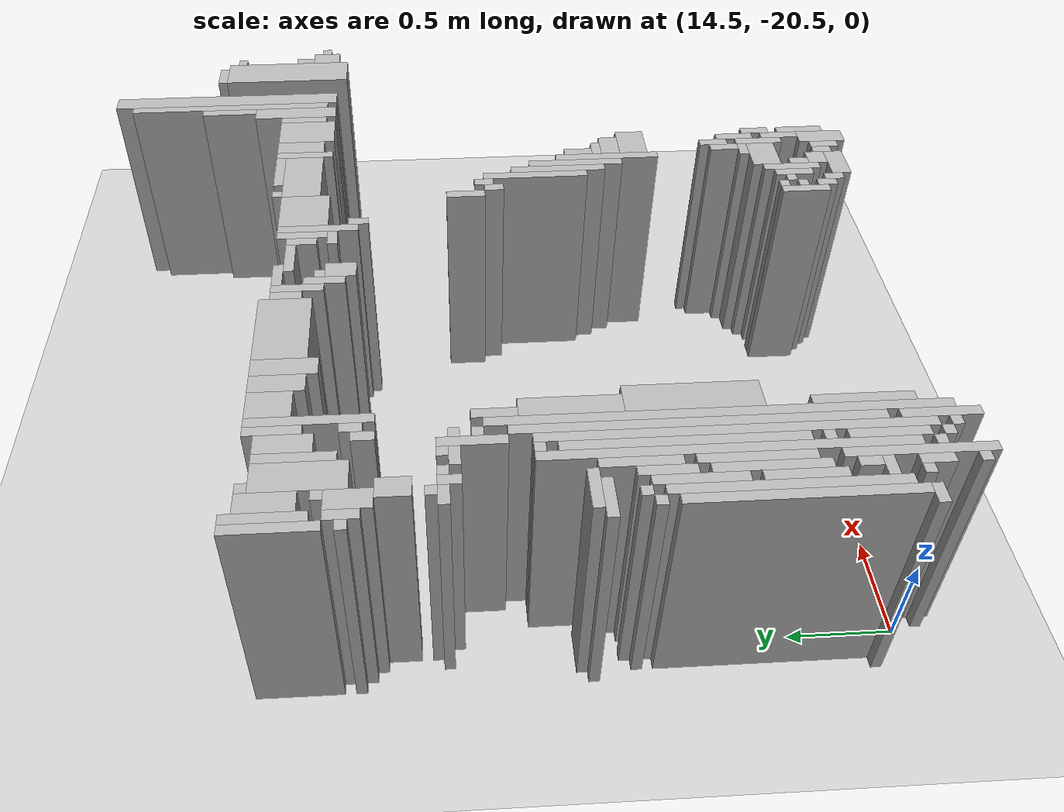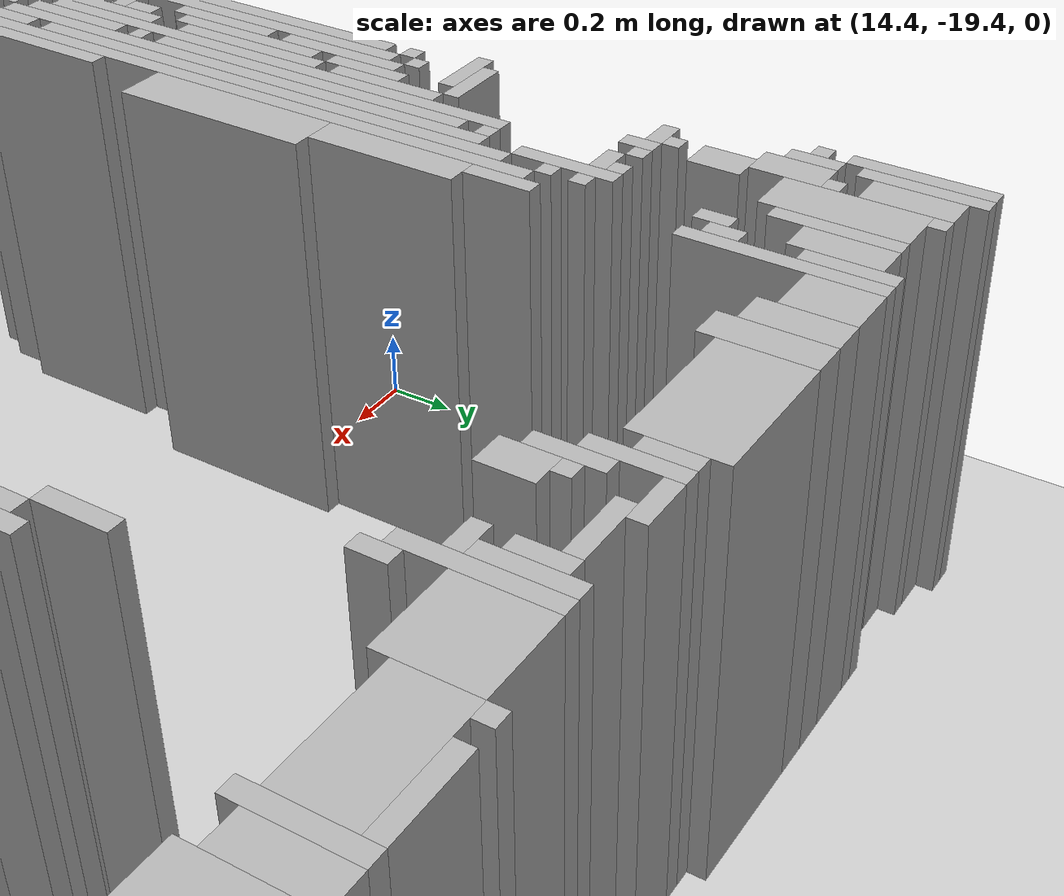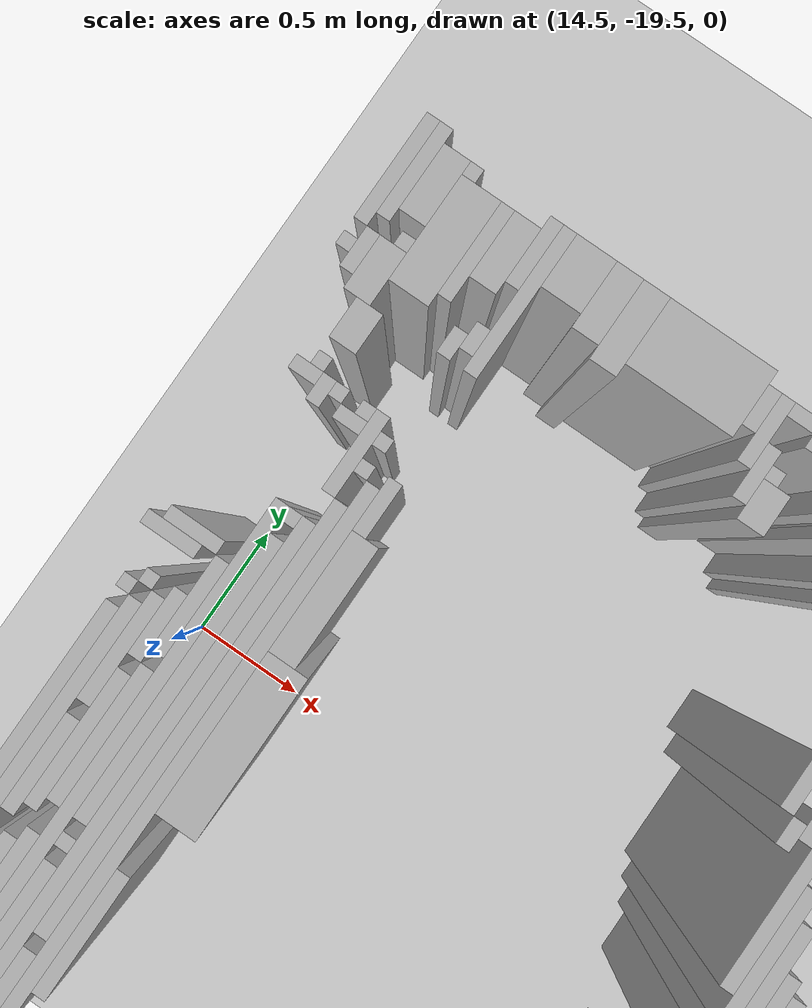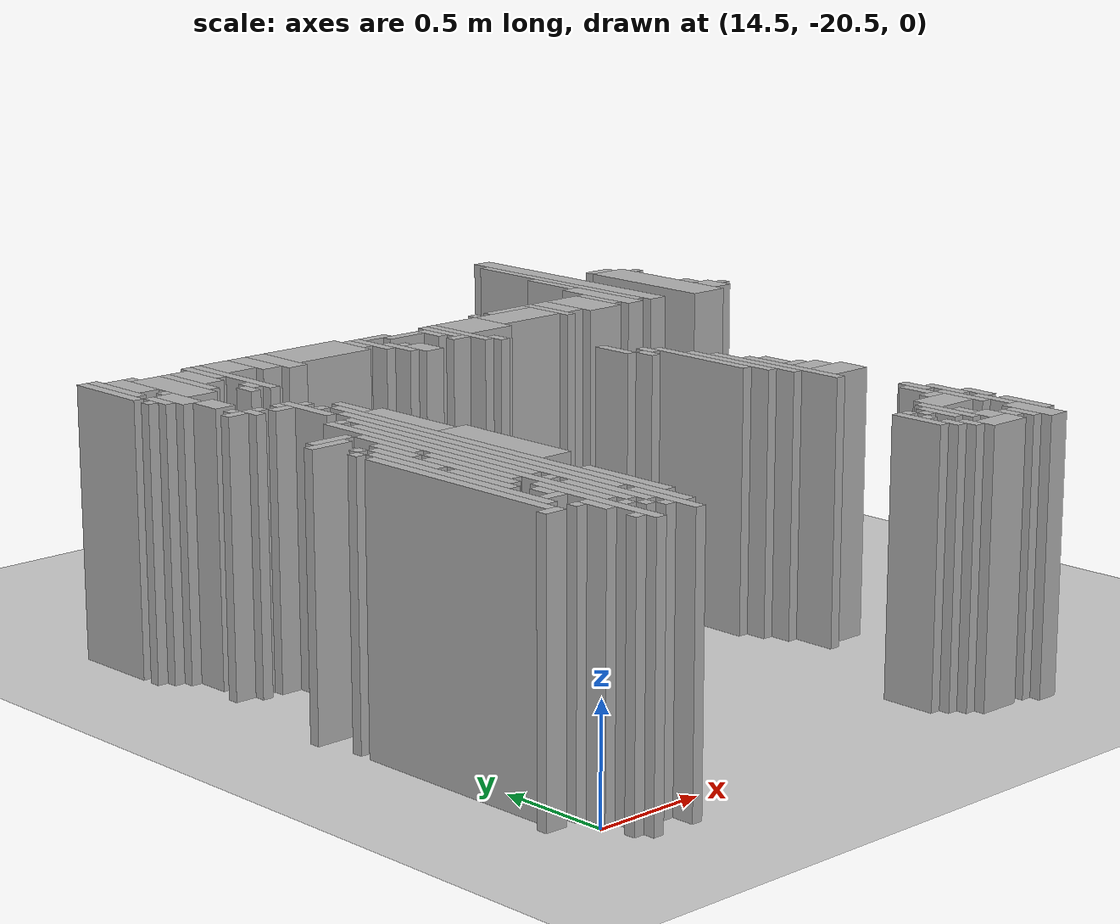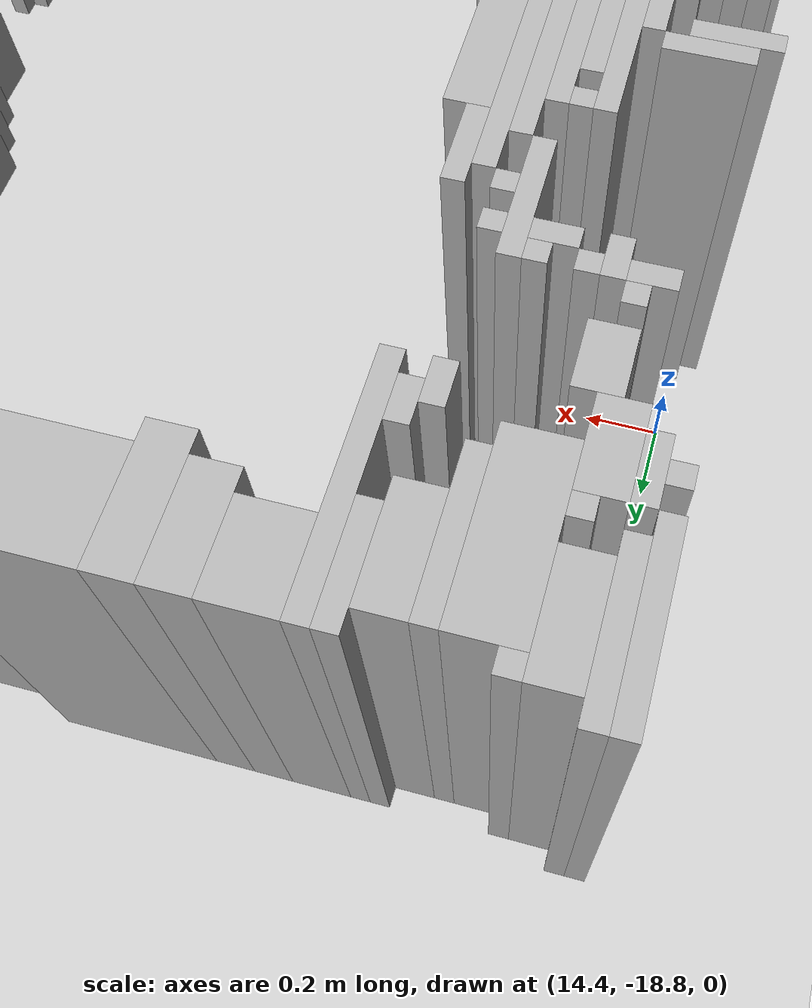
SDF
<sdf version="1.6">
 <world name="d10_floor">
  <include><uri>model://sun</uri></include>
  <include><uri>model://ground_plane</uri></include>
  <model name="d10_walls">
   <static>true</static>
   <link name="w8">
    <pose>14.600 -20.370 0.60 0 0 0</pose>
    <collision name="c"><geometry><box><size>0.050 0.650 1.20</size></box></geometry></collision>
    <visual name="v">
     <geometry><box><size>0.050 0.650 1.20</size></box></geometry>
     <material><ambient>0.6 0.6 0.6 1</ambient><diffuse>0.7 0.7 0.7 1</diffuse></material>
    </visual>
   </link>
   <link name="w9">
    <pose>14.800 -20.520 0.60 0 0 0</pose>
    <collision name="c"><geometry><box><size>0.050 0.350 1.20</size></box></geometry></collision>
    <visual name="v">
     <geometry><box><size>0.050 0.350 1.20</size></box></geometry>
     <material><ambient>0.6 0.6 0.6 1</ambient><diffuse>0.7 0.7 0.7 1</diffuse></material>
    </visual>
   </link>
   <link name="w10">
    <pose>16.875 -20.570 0.60 0 0 0</pose>
    <collision name="c"><geometry><box><size>0.100 0.250 1.20</size></box></geometry></collision>
    <visual name="v">
     <geometry><box><size>0.100 0.250 1.20</size></box></geometry>
     <material><ambient>0.6 0.6 0.6 1</ambient><diffuse>0.7 0.7 0.7 1</diffuse></material>
    </visual>
   </link>
   <link name="w12">
    <pose>14.550 -20.620 0.60 0 0 0</pose>
    <collision name="c"><geometry><box><size>0.050 0.050 1.20</size></box></geometry></collision>
    <visual name="v">
     <geometry><box><size>0.050 0.050 1.20</size></box></geometry>
     <material><ambient>0.6 0.6 0.6 1</ambient><diffuse>0.7 0.7 0.7 1</diffuse></material>
    </visual>
   </link>
   <link name="w13">
    <pose>16.625 -20.595 0.60 0 0 0</pose>
    <collision name="c"><geometry><box><size>0.200 0.100 1.20</size></box></geometry></collision>
    <visual name="v">
     <geometry><box><size>0.200 0.100 1.20</size></box></geometry>
     <material><ambient>0.6 0.6 0.6 1</ambient><diffuse>0.7 0.7 0.7 1</diffuse></material>
    </visual>
   </link>
   <link name="w14">
    <pose>16.800 -20.570 0.60 0 0 0</pose>
    <collision name="c"><geometry><box><size>0.050 0.150 1.20</size></box></geometry></collision>
    <visual name="v">
     <geometry><box><size>0.050 0.150 1.20</size></box></geometry>
     <material><ambient>0.6 0.6 0.6 1</ambient><diffuse>0.7 0.7 0.7 1</diffuse></material>
    </visual>
   </link>
   <link name="w16">
    <pose>14.750 -20.570 0.60 0 0 0</pose>
    <collision name="c"><geometry><box><size>0.050 0.050 1.20</size></box></geometry></collision>
    <visual name="v">
     <geometry><box><size>0.050 0.050 1.20</size></box></geometry>
     <material><ambient>0.6 0.6 0.6 1</ambient><diffuse>0.7 0.7 0.7 1</diffuse></material>
    </visual>
   </link>
   <link name="w17">
    <pose>14.850 -19.595 0.60 0 0 0</pose>
    <collision name="c"><geometry><box><size>0.050 2.000 1.20</size></box></geometry></collision>
    <visual name="v">
     <geometry><box><size>0.050 2.000 1.20</size></box></geometry>
     <material><ambient>0.6 0.6 0.6 1</ambient><diffuse>0.7 0.7 0.7 1</diffuse></material>
    </visual>
   </link>
   <link name="w18">
    <pose>16.500 -20.545 0.60 0 0 0</pose>
    <collision name="c"><geometry><box><size>0.050 0.100 1.20</size></box></geometry></collision>
    <visual name="v">
     <geometry><box><size>0.050 0.100 1.20</size></box></geometry>
     <material><ambient>0.6 0.6 0.6 1</ambient><diffuse>0.7 0.7 0.7 1</diffuse></material>
    </visual>
   </link>
   <link name="w19">
    <pose>16.750 -20.545 0.60 0 0 0</pose>
    <collision name="c"><geometry><box><size>0.050 0.100 1.20</size></box></geometry></collision>
    <visual name="v">
     <geometry><box><size>0.050 0.100 1.20</size></box></geometry>
     <material><ambient>0.6 0.6 0.6 1</ambient><diffuse>0.7 0.7 0.7 1</diffuse></material>
    </visual>
   </link>
   <link name="w20">
    <pose>16.950 -20.470 0.60 0 0 0</pose>
    <collision name="c"><geometry><box><size>0.050 0.250 1.20</size></box></geometry></collision>
    <visual name="v">
     <geometry><box><size>0.050 0.250 1.20</size></box></geometry>
     <material><ambient>0.6 0.6 0.6 1</ambient><diffuse>0.7 0.7 0.7 1</diffuse></material>
    </visual>
   </link>
   <link name="w23">
    <pose>14.700 -20.520 0.60 0 0 0</pose>
    <collision name="c"><geometry><box><size>0.050 0.050 1.20</size></box></geometry></collision>
    <visual name="v">
     <geometry><box><size>0.050 0.050 1.20</size></box></geometry>
     <material><ambient>0.6 0.6 0.6 1</ambient><diffuse>0.7 0.7 0.7 1</diffuse></material>
    </visual>
   </link>
   <link name="w24">
    <pose>16.450 -20.495 0.60 0 0 0</pose>
    <collision name="c"><geometry><box><size>0.050 0.100 1.20</size></box></geometry></collision>
    <visual name="v">
     <geometry><box><size>0.050 0.100 1.20</size></box></geometry>
     <material><ambient>0.6 0.6 0.6 1</ambient><diffuse>0.7 0.7 0.7 1</diffuse></material>
    </visual>
   </link>
   <link name="w25">
    <pose>16.675 -20.495 0.60 0 0 0</pose>
    <collision name="c"><geometry><box><size>0.100 0.100 1.20</size></box></geometry></collision>
    <visual name="v">
     <geometry><box><size>0.100 0.100 1.20</size></box></geometry>
     <material><ambient>0.6 0.6 0.6 1</ambient><diffuse>0.7 0.7 0.7 1</diffuse></material>
    </visual>
   </link>
   <link name="w26">
    <pose>14.550 -20.420 0.60 0 0 0</pose>
    <collision name="c"><geometry><box><size>0.050 0.150 1.20</size></box></geometry></collision>
    <visual name="v">
     <geometry><box><size>0.050 0.150 1.20</size></box></geometry>
     <material><ambient>0.6 0.6 0.6 1</ambient><diffuse>0.7 0.7 0.7 1</diffuse></material>
    </visual>
   </link>
   <link name="w27">
    <pose>14.650 -20.470 0.60 0 0 0</pose>
    <collision name="c"><geometry><box><size>0.050 0.050 1.20</size></box></geometry></collision>
    <visual name="v">
     <geometry><box><size>0.050 0.050 1.20</size></box></geometry>
     <material><ambient>0.6 0.6 0.6 1</ambient><diffuse>0.7 0.7 0.7 1</diffuse></material>
    </visual>
   </link>
   <link name="w28">
    <pose>14.750 -19.645 0.60 0 0 0</pose>
    <collision name="c"><geometry><box><size>0.050 1.700 1.20</size></box></geometry></collision>
    <visual name="v">
     <geometry><box><size>0.050 1.700 1.20</size></box></geometry>
     <material><ambient>0.6 0.6 0.6 1</ambient><diffuse>0.7 0.7 0.7 1</diffuse></material>
    </visual>
   </link>
   <link name="w29">
    <pose>16.400 -20.370 0.60 0 0 0</pose>
    <collision name="c"><geometry><box><size>0.050 0.250 1.20</size></box></geometry></collision>
    <visual name="v">
     <geometry><box><size>0.050 0.250 1.20</size></box></geometry>
     <material><ambient>0.6 0.6 0.6 1</ambient><diffuse>0.7 0.7 0.7 1</diffuse></material>
    </visual>
   </link>
   <link name="w30">
    <pose>16.600 -20.345 0.60 0 0 0</pose>
    <collision name="c"><geometry><box><size>0.050 0.300 1.20</size></box></geometry></collision>
    <visual name="v">
     <geometry><box><size>0.050 0.300 1.20</size></box></geometry>
     <material><ambient>0.6 0.6 0.6 1</ambient><diffuse>0.7 0.7 0.7 1</diffuse></material>
    </visual>
   </link>
   <link name="w31">
    <pose>14.700 -20.270 0.60 0 0 0</pose>
    <collision name="c"><geometry><box><size>0.050 0.350 1.20</size></box></geometry></collision>
    <visual name="v">
     <geometry><box><size>0.050 0.350 1.20</size></box></geometry>
     <material><ambient>0.6 0.6 0.6 1</ambient><diffuse>0.7 0.7 0.7 1</diffuse></material>
    </visual>
   </link>
   <link name="w32">
    <pose>14.900 -20.220 0.60 0 0 0</pose>
    <collision name="c"><geometry><box><size>0.050 0.450 1.20</size></box></geometry></collision>
    <visual name="v">
     <geometry><box><size>0.050 0.450 1.20</size></box></geometry>
     <material><ambient>0.6 0.6 0.6 1</ambient><diffuse>0.7 0.7 0.7 1</diffuse></material>
    </visual>
   </link>
   <link name="w33">
    <pose>16.550 -20.345 0.60 0 0 0</pose>
    <collision name="c"><geometry><box><size>0.050 0.200 1.20</size></box></geometry></collision>
    <visual name="v">
     <geometry><box><size>0.050 0.200 1.20</size></box></geometry>
     <material><ambient>0.6 0.6 0.6 1</ambient><diffuse>0.7 0.7 0.7 1</diffuse></material>
    </visual>
   </link>
   <link name="w34">
    <pose>16.650 -20.395 0.60 0 0 0</pose>
    <collision name="c"><geometry><box><size>0.050 0.100 1.20</size></box></geometry></collision>
    <visual name="v">
     <geometry><box><size>0.050 0.100 1.20</size></box></geometry>
     <material><ambient>0.6 0.6 0.6 1</ambient><diffuse>0.7 0.7 0.7 1</diffuse></material>
    </visual>
   </link>
   <link name="w35">
    <pose>16.900 -20.345 0.60 0 0 0</pose>
    <collision name="c"><geometry><box><size>0.050 0.200 1.20</size></box></geometry></collision>
    <visual name="v">
     <geometry><box><size>0.050 0.200 1.20</size></box></geometry>
     <material><ambient>0.6 0.6 0.6 1</ambient><diffuse>0.7 0.7 0.7 1</diffuse></material>
    </visual>
   </link>
   <link name="w37">
    <pose>14.375 -20.370 0.60 0 0 0</pose>
    <collision name="c"><geometry><box><size>0.100 0.050 1.20</size></box></geometry></collision>
    <visual name="v">
     <geometry><box><size>0.100 0.050 1.20</size></box></geometry>
     <material><ambient>0.6 0.6 0.6 1</ambient><diffuse>0.7 0.7 0.7 1</diffuse></material>
    </visual>
   </link>
   <link name="w38">
    <pose>14.500 -20.370 0.60 0 0 0</pose>
    <collision name="c"><geometry><box><size>0.050 0.050 1.20</size></box></geometry></collision>
    <visual name="v">
     <geometry><box><size>0.050 0.050 1.20</size></box></geometry>
     <material><ambient>0.6 0.6 0.6 1</ambient><diffuse>0.7 0.7 0.7 1</diffuse></material>
    </visual>
   </link>
   <link name="w39">
    <pose>14.650 -19.595 0.60 0 0 0</pose>
    <collision name="c"><geometry><box><size>0.050 1.600 1.20</size></box></geometry></collision>
    <visual name="v">
     <geometry><box><size>0.050 1.600 1.20</size></box></geometry>
     <material><ambient>0.6 0.6 0.6 1</ambient><diffuse>0.7 0.7 0.7 1</diffuse></material>
    </visual>
   </link>
   <link name="w40">
    <pose>16.450 -20.370 0.60 0 0 0</pose>
    <collision name="c"><geometry><box><size>0.050 0.050 1.20</size></box></geometry></collision>
    <visual name="v">
     <geometry><box><size>0.050 0.050 1.20</size></box></geometry>
     <material><ambient>0.6 0.6 0.6 1</ambient><diffuse>0.7 0.7 0.7 1</diffuse></material>
    </visual>
   </link>
   <link name="w42">
    <pose>14.400 -19.845 0.60 0 0 0</pose>
    <collision name="c"><geometry><box><size>0.050 1.000 1.20</size></box></geometry></collision>
    <visual name="v">
     <geometry><box><size>0.050 1.000 1.20</size></box></geometry>
     <material><ambient>0.6 0.6 0.6 1</ambient><diffuse>0.7 0.7 0.7 1</diffuse></material>
    </visual>
   </link>
   <link name="w43">
    <pose>16.500 -20.320 0.60 0 0 0</pose>
    <collision name="c"><geometry><box><size>0.050 0.050 1.20</size></box></geometry></collision>
    <visual name="v">
     <geometry><box><size>0.050 0.050 1.20</size></box></geometry>
     <material><ambient>0.6 0.6 0.6 1</ambient><diffuse>0.7 0.7 0.7 1</diffuse></material>
    </visual>
   </link>
   <link name="w44">
    <pose>16.850 -20.220 0.60 0 0 0</pose>
    <collision name="c"><geometry><box><size>0.050 0.250 1.20</size></box></geometry></collision>
    <visual name="v">
     <geometry><box><size>0.050 0.250 1.20</size></box></geometry>
     <material><ambient>0.6 0.6 0.6 1</ambient><diffuse>0.7 0.7 0.7 1</diffuse></material>
    </visual>
   </link>
   <link name="w45">
    <pose>14.450 -19.795 0.60 0 0 0</pose>
    <collision name="c"><geometry><box><size>0.050 1.000 1.20</size></box></geometry></collision>
    <visual name="v">
     <geometry><box><size>0.050 1.000 1.20</size></box></geometry>
     <material><ambient>0.6 0.6 0.6 1</ambient><diffuse>0.7 0.7 0.7 1</diffuse></material>
    </visual>
   </link>
   <link name="w46">
    <pose>14.800 -19.495 0.60 0 0 0</pose>
    <collision name="c"><geometry><box><size>0.050 1.600 1.20</size></box></geometry></collision>
    <visual name="v">
     <geometry><box><size>0.050 1.600 1.20</size></box></geometry>
     <material><ambient>0.6 0.6 0.6 1</ambient><diffuse>0.7 0.7 0.7 1</diffuse></material>
    </visual>
   </link>
   <link name="w47">
    <pose>16.450 -20.270 0.60 0 0 0</pose>
    <collision name="c"><geometry><box><size>0.050 0.050 1.20</size></box></geometry></collision>
    <visual name="v">
     <geometry><box><size>0.050 0.050 1.20</size></box></geometry>
     <material><ambient>0.6 0.6 0.6 1</ambient><diffuse>0.7 0.7 0.7 1</diffuse></material>
    </visual>
   </link>
   <link name="w48">
    <pose>16.725 -20.220 0.60 0 0 0</pose>
    <collision name="c"><geometry><box><size>0.200 0.150 1.20</size></box></geometry></collision>
    <visual name="v">
     <geometry><box><size>0.200 0.150 1.20</size></box></geometry>
     <material><ambient>0.6 0.6 0.6 1</ambient><diffuse>0.7 0.7 0.7 1</diffuse></material>
    </visual>
   </link>
   <link name="w49">
    <pose>16.950 -20.220 0.60 0 0 0</pose>
    <collision name="c"><geometry><box><size>0.050 0.150 1.20</size></box></geometry></collision>
    <visual name="v">
     <geometry><box><size>0.050 0.150 1.20</size></box></geometry>
     <material><ambient>0.6 0.6 0.6 1</ambient><diffuse>0.7 0.7 0.7 1</diffuse></material>
    </visual>
   </link>
   <link name="w52">
    <pose>14.525 -20.220 0.60 0 0 0</pose>
    <collision name="c"><geometry><box><size>0.100 0.050 1.20</size></box></geometry></collision>
    <visual name="v">
     <geometry><box><size>0.100 0.050 1.20</size></box></geometry>
     <material><ambient>0.6 0.6 0.6 1</ambient><diffuse>0.7 0.7 0.7 1</diffuse></material>
    </visual>
   </link>
   <link name="w53">
    <pose>14.550 -20.145 0.60 0 0 0</pose>
    <collision name="c"><geometry><box><size>0.050 0.100 1.20</size></box></geometry></collision>
    <visual name="v">
     <geometry><box><size>0.050 0.100 1.20</size></box></geometry>
     <material><ambient>0.6 0.6 0.6 1</ambient><diffuse>0.7 0.7 0.7 1</diffuse></material>
    </visual>
   </link>
   <link name="w54">
    <pose>16.900 -20.095 0.60 0 0 0</pose>
    <collision name="c"><geometry><box><size>0.050 0.200 1.20</size></box></geometry></collision>
    <visual name="v">
     <geometry><box><size>0.050 0.200 1.20</size></box></geometry>
     <material><ambient>0.6 0.6 0.6 1</ambient><diffuse>0.7 0.7 0.7 1</diffuse></material>
    </visual>
   </link>
   <link name="w56">
    <pose>16.775 -20.120 0.60 0 0 0</pose>
    <collision name="c"><geometry><box><size>0.100 0.050 1.20</size></box></geometry></collision>
    <visual name="v">
     <geometry><box><size>0.100 0.050 1.20</size></box></geometry>
     <material><ambient>0.6 0.6 0.6 1</ambient><diffuse>0.7 0.7 0.7 1</diffuse></material>
    </visual>
   </link>
   <link name="w58">
    <pose>16.800 -20.020 0.60 0 0 0</pose>
    <collision name="c"><geometry><box><size>0.050 0.150 1.20</size></box></geometry></collision>
    <visual name="v">
     <geometry><box><size>0.050 0.150 1.20</size></box></geometry>
     <material><ambient>0.6 0.6 0.6 1</ambient><diffuse>0.7 0.7 0.7 1</diffuse></material>
    </visual>
   </link>
   <link name="w61">
    <pose>14.500 -19.870 0.60 0 0 0</pose>
    <collision name="c"><geometry><box><size>0.050 0.350 1.20</size></box></geometry></collision>
    <visual name="v">
     <geometry><box><size>0.050 0.350 1.20</size></box></geometry>
     <material><ambient>0.6 0.6 0.6 1</ambient><diffuse>0.7 0.7 0.7 1</diffuse></material>
    </visual>
   </link>
   <link name="w62">
    <pose>14.700 -20.020 0.60 0 0 0</pose>
    <collision name="c"><geometry><box><size>0.050 0.050 1.20</size></box></geometry></collision>
    <visual name="v">
     <geometry><box><size>0.050 0.050 1.20</size></box></geometry>
     <material><ambient>0.6 0.6 0.6 1</ambient><diffuse>0.7 0.7 0.7 1</diffuse></material>
    </visual>
   </link>
   <link name="w63">
    <pose>16.850 -19.970 0.60 0 0 0</pose>
    <collision name="c"><geometry><box><size>0.050 0.150 1.20</size></box></geometry></collision>
    <visual name="v">
     <geometry><box><size>0.050 0.150 1.20</size></box></geometry>
     <material><ambient>0.6 0.6 0.6 1</ambient><diffuse>0.7 0.7 0.7 1</diffuse></material>
    </visual>
   </link>
   <link name="w65">
    <pose>14.550 -19.745 0.60 0 0 0</pose>
    <collision name="c"><geometry><box><size>0.050 0.500 1.20</size></box></geometry></collision>
    <visual name="v">
     <geometry><box><size>0.050 0.500 1.20</size></box></geometry>
     <material><ambient>0.6 0.6 0.6 1</ambient><diffuse>0.7 0.7 0.7 1</diffuse></material>
    </visual>
   </link>
   <link name="w66">
    <pose>14.600 -19.695 0.60 0 0 0</pose>
    <collision name="c"><geometry><box><size>0.050 0.500 1.20</size></box></geometry></collision>
    <visual name="v">
     <geometry><box><size>0.050 0.500 1.20</size></box></geometry>
     <material><ambient>0.6 0.6 0.6 1</ambient><diffuse>0.7 0.7 0.7 1</diffuse></material>
    </visual>
   </link>
   <link name="w67">
    <pose>14.700 -19.420 0.60 0 0 0</pose>
    <collision name="c"><geometry><box><size>0.050 1.050 1.20</size></box></geometry></collision>
    <visual name="v">
     <geometry><box><size>0.050 1.050 1.20</size></box></geometry>
     <material><ambient>0.6 0.6 0.6 1</ambient><diffuse>0.7 0.7 0.7 1</diffuse></material>
    </visual>
   </link>
   <link name="w73">
    <pose>14.950 -19.495 0.60 0 0 0</pose>
    <collision name="c"><geometry><box><size>0.150 0.600 1.20</size></box></geometry></collision>
    <visual name="v">
     <geometry><box><size>0.150 0.600 1.20</size></box></geometry>
     <material><ambient>0.6 0.6 0.6 1</ambient><diffuse>0.7 0.7 0.7 1</diffuse></material>
    </visual>
   </link>
   <link name="w77">
    <pose>14.500 -19.445 0.60 0 0 0</pose>
    <collision name="c"><geometry><box><size>0.050 0.400 1.20</size></box></geometry></collision>
    <visual name="v">
     <geometry><box><size>0.050 0.400 1.20</size></box></geometry>
     <material><ambient>0.6 0.6 0.6 1</ambient><diffuse>0.7 0.7 0.7 1</diffuse></material>
    </visual>
   </link>
   <link name="w78">
    <pose>16.750 -19.370 0.60 0 0 0</pose>
    <collision name="c"><geometry><box><size>0.050 0.550 1.20</size></box></geometry></collision>
    <visual name="v">
     <geometry><box><size>0.050 0.550 1.20</size></box></geometry>
     <material><ambient>0.6 0.6 0.6 1</ambient><diffuse>0.7 0.7 0.7 1</diffuse></material>
    </visual>
   </link>
   <link name="w81">
    <pose>16.875 -19.520 0.60 0 0 0</pose>
    <collision name="c"><geometry><box><size>0.200 0.150 1.20</size></box></geometry></collision>
    <visual name="v">
     <geometry><box><size>0.200 0.150 1.20</size></box></geometry>
     <material><ambient>0.6 0.6 0.6 1</ambient><diffuse>0.7 0.7 0.7 1</diffuse></material>
    </visual>
   </link>
   <link name="w86">
    <pose>14.550 -19.320 0.60 0 0 0</pose>
    <collision name="c"><geometry><box><size>0.050 0.250 1.20</size></box></geometry></collision>
    <visual name="v">
     <geometry><box><size>0.050 0.250 1.20</size></box></geometry>
     <material><ambient>0.6 0.6 0.6 1</ambient><diffuse>0.7 0.7 0.7 1</diffuse></material>
    </visual>
   </link>
   <link name="w87">
    <pose>16.700 -19.195 0.60 0 0 0</pose>
    <collision name="c"><geometry><box><size>0.050 0.500 1.20</size></box></geometry></collision>
    <visual name="v">
     <geometry><box><size>0.050 0.500 1.20</size></box></geometry>
     <material><ambient>0.6 0.6 0.6 1</ambient><diffuse>0.7 0.7 0.7 1</diffuse></material>
    </visual>
   </link>
   <link name="w88">
    <pose>16.850 -19.395 0.60 0 0 0</pose>
    <collision name="c"><geometry><box><size>0.150 0.100 1.20</size></box></geometry></collision>
    <visual name="v">
     <geometry><box><size>0.150 0.100 1.20</size></box></geometry>
     <material><ambient>0.6 0.6 0.6 1</ambient><diffuse>0.7 0.7 0.7 1</diffuse></material>
    </visual>
   </link>
   <link name="w92">
    <pose>14.600 -19.220 0.60 0 0 0</pose>
    <collision name="c"><geometry><box><size>0.050 0.350 1.20</size></box></geometry></collision>
    <visual name="v">
     <geometry><box><size>0.050 0.350 1.20</size></box></geometry>
     <material><ambient>0.6 0.6 0.6 1</ambient><diffuse>0.7 0.7 0.7 1</diffuse></material>
    </visual>
   </link>
   <link name="w94">
    <pose>16.650 -19.095 0.60 0 0 0</pose>
    <collision name="c"><geometry><box><size>0.050 0.500 1.20</size></box></geometry></collision>
    <visual name="v">
     <geometry><box><size>0.050 0.500 1.20</size></box></geometry>
     <material><ambient>0.6 0.6 0.6 1</ambient><diffuse>0.7 0.7 0.7 1</diffuse></material>
    </visual>
   </link>
   <link name="w95">
    <pose>16.825 -19.320 0.60 0 0 0</pose>
    <collision name="c"><geometry><box><size>0.100 0.050 1.20</size></box></geometry></collision>
    <visual name="v">
     <geometry><box><size>0.100 0.050 1.20</size></box></geometry>
     <material><ambient>0.6 0.6 0.6 1</ambient><diffuse>0.7 0.7 0.7 1</diffuse></material>
    </visual>
   </link>
   <link name="w97">
    <pose>14.400 -19.270 0.60 0 0 0</pose>
    <collision name="c"><geometry><box><size>0.050 0.050 1.20</size></box></geometry></collision>
    <visual name="v">
     <geometry><box><size>0.050 0.050 1.20</size></box></geometry>
     <material><ambient>0.6 0.6 0.6 1</ambient><diffuse>0.7 0.7 0.7 1</diffuse></material>
    </visual>
   </link>
   <link name="w98">
    <pose>16.800 -19.220 0.60 0 0 0</pose>
    <collision name="c"><geometry><box><size>0.050 0.150 1.20</size></box></geometry></collision>
    <visual name="v">
     <geometry><box><size>0.050 0.150 1.20</size></box></geometry>
     <material><ambient>0.6 0.6 0.6 1</ambient><diffuse>0.7 0.7 0.7 1</diffuse></material>
    </visual>
   </link>
   <link name="w100">
    <pose>14.450 -19.220 0.60 0 0 0</pose>
    <collision name="c"><geometry><box><size>0.050 0.050 1.20</size></box></geometry></collision>
    <visual name="v">
     <geometry><box><size>0.050 0.050 1.20</size></box></geometry>
     <material><ambient>0.6 0.6 0.6 1</ambient><diffuse>0.7 0.7 0.7 1</diffuse></material>
    </visual>
   </link>
   <link name="w101">
    <pose>16.600 -18.970 0.60 0 0 0</pose>
    <collision name="c"><geometry><box><size>0.050 0.550 1.20</size></box></geometry></collision>
    <visual name="v">
     <geometry><box><size>0.050 0.550 1.20</size></box></geometry>
     <material><ambient>0.6 0.6 0.6 1</ambient><diffuse>0.7 0.7 0.7 1</diffuse></material>
    </visual>
   </link>
   <link name="w102">
    <pose>14.925 -18.970 0.60 0 0 0</pose>
    <collision name="c"><geometry><box><size>0.100 0.450 1.20</size></box></geometry></collision>
    <visual name="v">
     <geometry><box><size>0.100 0.450 1.20</size></box></geometry>
     <material><ambient>0.6 0.6 0.6 1</ambient><diffuse>0.7 0.7 0.7 1</diffuse></material>
    </visual>
   </link>
   <link name="w106">
    <pose>14.425 -19.070 0.60 0 0 0</pose>
    <collision name="c"><geometry><box><size>0.200 0.050 1.20</size></box></geometry></collision>
    <visual name="v">
     <geometry><box><size>0.200 0.050 1.20</size></box></geometry>
     <material><ambient>0.6 0.6 0.6 1</ambient><diffuse>0.7 0.7 0.7 1</diffuse></material>
    </visual>
   </link>
   <link name="w108">
    <pose>14.475 -19.020 0.60 0 0 0</pose>
    <collision name="c"><geometry><box><size>0.200 0.050 1.20</size></box></geometry></collision>
    <visual name="v">
     <geometry><box><size>0.200 0.050 1.20</size></box></geometry>
     <material><ambient>0.6 0.6 0.6 1</ambient><diffuse>0.7 0.7 0.7 1</diffuse></material>
    </visual>
   </link>
   <link name="w110">
    <pose>14.700 -18.820 0.60 0 0 0</pose>
    <collision name="c"><geometry><box><size>0.050 0.050 1.20</size></box></geometry></collision>
    <visual name="v">
     <geometry><box><size>0.050 0.050 1.20</size></box></geometry>
     <material><ambient>0.6 0.6 0.6 1</ambient><diffuse>0.7 0.7 0.7 1</diffuse></material>
    </visual>
   </link>
   <link name="w112">
    <pose>16.500 -18.745 0.60 0 0 0</pose>
    <collision name="c"><geometry><box><size>0.050 0.100 1.20</size></box></geometry></collision>
    <visual name="v">
     <geometry><box><size>0.050 0.100 1.20</size></box></geometry>
     <material><ambient>0.6 0.6 0.6 1</ambient><diffuse>0.7 0.7 0.7 1</diffuse></material>
    </visual>
   </link>
   <link name="w113">
    <pose>14.900 -18.645 0.60 0 0 0</pose>
    <collision name="c"><geometry><box><size>0.050 0.200 1.20</size></box></geometry></collision>
    <visual name="v">
     <geometry><box><size>0.050 0.200 1.20</size></box></geometry>
     <material><ambient>0.6 0.6 0.6 1</ambient><diffuse>0.7 0.7 0.7 1</diffuse></material>
    </visual>
   </link>
   <link name="w114">
    <pose>16.550 -18.695 0.60 0 0 0</pose>
    <collision name="c"><geometry><box><size>0.050 0.100 1.20</size></box></geometry></collision>
    <visual name="v">
     <geometry><box><size>0.050 0.100 1.20</size></box></geometry>
     <material><ambient>0.6 0.6 0.6 1</ambient><diffuse>0.7 0.7 0.7 1</diffuse></material>
    </visual>
   </link>
   <link name="w115">
    <pose>14.750 -18.545 0.60 0 0 0</pose>
    <collision name="c"><geometry><box><size>0.050 0.300 1.20</size></box></geometry></collision>
    <visual name="v">
     <geometry><box><size>0.050 0.300 1.20</size></box></geometry>
     <material><ambient>0.6 0.6 0.6 1</ambient><diffuse>0.7 0.7 0.7 1</diffuse></material>
    </visual>
   </link>
   <link name="w116">
    <pose>16.450 -18.595 0.60 0 0 0</pose>
    <collision name="c"><geometry><box><size>0.050 0.200 1.20</size></box></geometry></collision>
    <visual name="v">
     <geometry><box><size>0.050 0.200 1.20</size></box></geometry>
     <material><ambient>0.6 0.6 0.6 1</ambient><diffuse>0.7 0.7 0.7 1</diffuse></material>
    </visual>
   </link>
   <link name="w118">
    <pose>14.800 -18.570 0.60 0 0 0</pose>
    <collision name="c"><geometry><box><size>0.050 0.050 1.20</size></box></geometry></collision>
    <visual name="v">
     <geometry><box><size>0.050 0.050 1.20</size></box></geometry>
     <material><ambient>0.6 0.6 0.6 1</ambient><diffuse>0.7 0.7 0.7 1</diffuse></material>
    </visual>
   </link>
   <link name="w119">
    <pose>14.550 -18.445 0.60 0 0 0</pose>
    <collision name="c"><geometry><box><size>0.050 0.100 1.20</size></box></geometry></collision>
    <visual name="v">
     <geometry><box><size>0.050 0.100 1.20</size></box></geometry>
     <material><ambient>0.6 0.6 0.6 1</ambient><diffuse>0.7 0.7 0.7 1</diffuse></material>
    </visual>
   </link>
   <link name="w120">
    <pose>14.675 -18.470 0.60 0 0 0</pose>
    <collision name="c"><geometry><box><size>0.100 0.050 1.20</size></box></geometry></collision>
    <visual name="v">
     <geometry><box><size>0.100 0.050 1.20</size></box></geometry>
     <material><ambient>0.6 0.6 0.6 1</ambient><diffuse>0.7 0.7 0.7 1</diffuse></material>
    </visual>
   </link>
   <link name="w121">
    <pose>14.800 -18.470 0.60 0 0 0</pose>
    <collision name="c"><geometry><box><size>0.050 0.050 1.20</size></box></geometry></collision>
    <visual name="v">
     <geometry><box><size>0.050 0.050 1.20</size></box></geometry>
     <material><ambient>0.6 0.6 0.6 1</ambient><diffuse>0.7 0.7 0.7 1</diffuse></material>
    </visual>
   </link>
   <link name="w123">
    <pose>14.475 -18.420 0.60 0 0 0</pose>
    <collision name="c"><geometry><box><size>0.100 0.050 1.20</size></box></geometry></collision>
    <visual name="v">
     <geometry><box><size>0.100 0.050 1.20</size></box></geometry>
     <material><ambient>0.6 0.6 0.6 1</ambient><diffuse>0.7 0.7 0.7 1</diffuse></material>
    </visual>
   </link>
   <link name="w124">
    <pose>14.600 -18.420 0.60 0 0 0</pose>
    <collision name="c"><geometry><box><size>0.050 0.050 1.20</size></box></geometry></collision>
    <visual name="v">
     <geometry><box><size>0.050 0.050 1.20</size></box></geometry>
     <material><ambient>0.6 0.6 0.6 1</ambient><diffuse>0.7 0.7 0.7 1</diffuse></material>
    </visual>
   </link>
   <link name="w125">
    <pose>14.700 -18.420 0.60 0 0 0</pose>
    <collision name="c"><geometry><box><size>0.050 0.050 1.20</size></box></geometry></collision>
    <visual name="v">
     <geometry><box><size>0.050 0.050 1.20</size></box></geometry>
     <material><ambient>0.6 0.6 0.6 1</ambient><diffuse>0.7 0.7 0.7 1</diffuse></material>
    </visual>
   </link>
   <link name="w127">
    <pose>14.500 -18.370 0.60 0 0 0</pose>
    <collision name="c"><geometry><box><size>0.050 0.050 1.20</size></box></geometry></collision>
    <visual name="v">
     <geometry><box><size>0.050 0.050 1.20</size></box></geometry>
     <material><ambient>0.6 0.6 0.6 1</ambient><diffuse>0.7 0.7 0.7 1</diffuse></material>
    </visual>
   </link>
   <link name="w130">
    <pose>14.525 -18.220 0.60 0 0 0</pose>
    <collision name="c"><geometry><box><size>0.100 0.150 1.20</size></box></geometry></collision>
    <visual name="v">
     <geometry><box><size>0.100 0.150 1.20</size></box></geometry>
     <material><ambient>0.6 0.6 0.6 1</ambient><diffuse>0.7 0.7 0.7 1</diffuse></material>
    </visual>
   </link>
   <link name="w136">
    <pose>14.475 -18.045 0.60 0 0 0</pose>
    <collision name="c"><geometry><box><size>0.100 0.200 1.20</size></box></geometry></collision>
    <visual name="v">
     <geometry><box><size>0.100 0.200 1.20</size></box></geometry>
     <material><ambient>0.6 0.6 0.6 1</ambient><diffuse>0.7 0.7 0.7 1</diffuse></material>
    </visual>
   </link>
   <link name="w137">
    <pose>14.800 -18.095 0.60 0 0 0</pose>
    <collision name="c"><geometry><box><size>0.050 0.100 1.20</size></box></geometry></collision>
    <visual name="v">
     <geometry><box><size>0.050 0.100 1.20</size></box></geometry>
     <material><ambient>0.6 0.6 0.6 1</ambient><diffuse>0.7 0.7 0.7 1</diffuse></material>
    </visual>
   </link>
   <link name="w138">
    <pose>14.900 -17.870 0.60 0 0 0</pose>
    <collision name="c"><geometry><box><size>0.050 0.550 1.20</size></box></geometry></collision>
    <visual name="v">
     <geometry><box><size>0.050 0.550 1.20</size></box></geometry>
     <material><ambient>0.6 0.6 0.6 1</ambient><diffuse>0.7 0.7 0.7 1</diffuse></material>
    </visual>
   </link>
   <link name="w143">
    <pose>14.400 -18.020 0.60 0 0 0</pose>
    <collision name="c"><geometry><box><size>0.050 0.150 1.20</size></box></geometry></collision>
    <visual name="v">
     <geometry><box><size>0.050 0.150 1.20</size></box></geometry>
     <material><ambient>0.6 0.6 0.6 1</ambient><diffuse>0.7 0.7 0.7 1</diffuse></material>
    </visual>
   </link>
   <link name="w144">
    <pose>14.850 -18.045 0.60 0 0 0</pose>
    <collision name="c"><geometry><box><size>0.050 0.100 1.20</size></box></geometry></collision>
    <visual name="v">
     <geometry><box><size>0.050 0.100 1.20</size></box></geometry>
     <material><ambient>0.6 0.6 0.6 1</ambient><diffuse>0.7 0.7 0.7 1</diffuse></material>
    </visual>
   </link>
   <link name="w145">
    <pose>16.250 -18.045 0.60 0 0 0</pose>
    <collision name="c"><geometry><box><size>0.050 0.100 1.20</size></box></geometry></collision>
    <visual name="v">
     <geometry><box><size>0.050 0.100 1.20</size></box></geometry>
     <material><ambient>0.6 0.6 0.6 1</ambient><diffuse>0.7 0.7 0.7 1</diffuse></material>
    </visual>
   </link>
   <link name="w148">
    <pose>14.350 -18.020 0.60 0 0 0</pose>
    <collision name="c"><geometry><box><size>0.050 0.050 1.20</size></box></geometry></collision>
    <visual name="v">
     <geometry><box><size>0.050 0.050 1.20</size></box></geometry>
     <material><ambient>0.6 0.6 0.6 1</ambient><diffuse>0.7 0.7 0.7 1</diffuse></material>
    </visual>
   </link>
   <link name="w149">
    <pose>14.600 -17.845 0.60 0 0 0</pose>
    <collision name="c"><geometry><box><size>0.150 0.400 1.20</size></box></geometry></collision>
    <visual name="v">
     <geometry><box><size>0.150 0.400 1.20</size></box></geometry>
     <material><ambient>0.6 0.6 0.6 1</ambient><diffuse>0.7 0.7 0.7 1</diffuse></material>
    </visual>
   </link>
   <link name="w150">
    <pose>15.875 -17.970 0.60 0 0 0</pose>
    <collision name="c"><geometry><box><size>0.100 0.150 1.20</size></box></geometry></collision>
    <visual name="v">
     <geometry><box><size>0.100 0.150 1.20</size></box></geometry>
     <material><ambient>0.6 0.6 0.6 1</ambient><diffuse>0.7 0.7 0.7 1</diffuse></material>
    </visual>
   </link>
   <link name="w151">
    <pose>16.200 -17.845 0.60 0 0 0</pose>
    <collision name="c"><geometry><box><size>0.050 0.400 1.20</size></box></geometry></collision>
    <visual name="v">
     <geometry><box><size>0.050 0.400 1.20</size></box></geometry>
     <material><ambient>0.6 0.6 0.6 1</ambient><diffuse>0.7 0.7 0.7 1</diffuse></material>
    </visual>
   </link>
   <link name="w155">
    <pose>14.700 -17.820 0.60 0 0 0</pose>
    <collision name="c"><geometry><box><size>0.050 0.350 1.20</size></box></geometry></collision>
    <visual name="v">
     <geometry><box><size>0.050 0.350 1.20</size></box></geometry>
     <material><ambient>0.6 0.6 0.6 1</ambient><diffuse>0.7 0.7 0.7 1</diffuse></material>
    </visual>
   </link>
   <link name="w156">
    <pose>15.800 -17.895 0.60 0 0 0</pose>
    <collision name="c"><geometry><box><size>0.050 0.200 1.20</size></box></geometry></collision>
    <visual name="v">
     <geometry><box><size>0.050 0.200 1.20</size></box></geometry>
     <material><ambient>0.6 0.6 0.6 1</ambient><diffuse>0.7 0.7 0.7 1</diffuse></material>
    </visual>
   </link>
   <link name="w161">
    <pose>14.350 -17.745 0.60 0 0 0</pose>
    <collision name="c"><geometry><box><size>0.050 0.400 1.20</size></box></geometry></collision>
    <visual name="v">
     <geometry><box><size>0.050 0.400 1.20</size></box></geometry>
     <material><ambient>0.6 0.6 0.6 1</ambient><diffuse>0.7 0.7 0.7 1</diffuse></material>
    </visual>
   </link>
   <link name="w162">
    <pose>14.500 -17.920 0.60 0 0 0</pose>
    <collision name="c"><geometry><box><size>0.050 0.050 1.20</size></box></geometry></collision>
    <visual name="v">
     <geometry><box><size>0.050 0.050 1.20</size></box></geometry>
     <material><ambient>0.6 0.6 0.6 1</ambient><diffuse>0.7 0.7 0.7 1</diffuse></material>
    </visual>
   </link>
   <link name="w163">
    <pose>16.125 -17.920 0.60 0 0 0</pose>
    <collision name="c"><geometry><box><size>0.100 0.050 1.20</size></box></geometry></collision>
    <visual name="v">
     <geometry><box><size>0.100 0.050 1.20</size></box></geometry>
     <material><ambient>0.6 0.6 0.6 1</ambient><diffuse>0.7 0.7 0.7 1</diffuse></material>
    </visual>
   </link>
   <link name="w165">
    <pose>17.725 -17.595 0.60 0 0 0</pose>
    <collision name="c"><geometry><box><size>0.200 0.700 1.20</size></box></geometry></collision>
    <visual name="v">
     <geometry><box><size>0.200 0.700 1.20</size></box></geometry>
     <material><ambient>0.6 0.6 0.6 1</ambient><diffuse>0.7 0.7 0.7 1</diffuse></material>
    </visual>
   </link>
   <link name="w169">
    <pose>14.400 -17.720 0.60 0 0 0</pose>
    <collision name="c"><geometry><box><size>0.050 0.350 1.20</size></box></geometry></collision>
    <visual name="v">
     <geometry><box><size>0.050 0.350 1.20</size></box></geometry>
     <material><ambient>0.6 0.6 0.6 1</ambient><diffuse>0.7 0.7 0.7 1</diffuse></material>
    </visual>
   </link>
   <link name="w170">
    <pose>14.775 -17.770 0.60 0 0 0</pose>
    <collision name="c"><geometry><box><size>0.100 0.250 1.20</size></box></geometry></collision>
    <visual name="v">
     <geometry><box><size>0.100 0.250 1.20</size></box></geometry>
     <material><ambient>0.6 0.6 0.6 1</ambient><diffuse>0.7 0.7 0.7 1</diffuse></material>
    </visual>
   </link>
   <link name="w171">
    <pose>15.225 -17.745 0.60 0 0 0</pose>
    <collision name="c"><geometry><box><size>0.100 0.300 1.20</size></box></geometry></collision>
    <visual name="v">
     <geometry><box><size>0.100 0.300 1.20</size></box></geometry>
     <material><ambient>0.6 0.6 0.6 1</ambient><diffuse>0.7 0.7 0.7 1</diffuse></material>
    </visual>
   </link>
   <link name="w172">
    <pose>15.750 -17.770 0.60 0 0 0</pose>
    <collision name="c"><geometry><box><size>0.050 0.250 1.20</size></box></geometry></collision>
    <visual name="v">
     <geometry><box><size>0.050 0.250 1.20</size></box></geometry>
     <material><ambient>0.6 0.6 0.6 1</ambient><diffuse>0.7 0.7 0.7 1</diffuse></material>
    </visual>
   </link>
   <link name="w173">
    <pose>15.850 -17.870 0.60 0 0 0</pose>
    <collision name="c"><geometry><box><size>0.050 0.050 1.20</size></box></geometry></collision>
    <visual name="v">
     <geometry><box><size>0.050 0.050 1.20</size></box></geometry>
     <material><ambient>0.6 0.6 0.6 1</ambient><diffuse>0.7 0.7 0.7 1</diffuse></material>
    </visual>
   </link>
   <link name="w174">
    <pose>16.150 -17.770 0.60 0 0 0</pose>
    <collision name="c"><geometry><box><size>0.050 0.250 1.20</size></box></geometry></collision>
    <visual name="v">
     <geometry><box><size>0.050 0.250 1.20</size></box></geometry>
     <material><ambient>0.6 0.6 0.6 1</ambient><diffuse>0.7 0.7 0.7 1</diffuse></material>
    </visual>
   </link>
   <link name="w175">
    <pose>16.350 -17.770 0.60 0 0 0</pose>
    <collision name="c"><geometry><box><size>0.250 0.250 1.20</size></box></geometry></collision>
    <visual name="v">
     <geometry><box><size>0.250 0.250 1.20</size></box></geometry>
     <material><ambient>0.6 0.6 0.6 1</ambient><diffuse>0.7 0.7 0.7 1</diffuse></material>
    </visual>
   </link>
   <link name="w176">
    <pose>16.850 -17.745 0.60 0 0 0</pose>
    <collision name="c"><geometry><box><size>0.050 0.300 1.20</size></box></geometry></collision>
    <visual name="v">
     <geometry><box><size>0.050 0.300 1.20</size></box></geometry>
     <material><ambient>0.6 0.6 0.6 1</ambient><diffuse>0.7 0.7 0.7 1</diffuse></material>
    </visual>
   </link>
   <link name="w177">
    <pose>17.075 -17.745 0.60 0 0 0</pose>
    <collision name="c"><geometry><box><size>0.200 0.300 1.20</size></box></geometry></collision>
    <visual name="v">
     <geometry><box><size>0.200 0.300 1.20</size></box></geometry>
     <material><ambient>0.6 0.6 0.6 1</ambient><diffuse>0.7 0.7 0.7 1</diffuse></material>
    </visual>
   </link>
   <link name="w178">
    <pose>17.275 -17.670 0.60 0 0 0</pose>
    <collision name="c"><geometry><box><size>0.100 0.450 1.20</size></box></geometry></collision>
    <visual name="v">
     <geometry><box><size>0.100 0.450 1.20</size></box></geometry>
     <material><ambient>0.6 0.6 0.6 1</ambient><diffuse>0.7 0.7 0.7 1</diffuse></material>
    </visual>
   </link>
   <link name="w179">
    <pose>17.425 -17.270 0.60 0 0 0</pose>
    <collision name="c"><geometry><box><size>0.100 1.250 1.20</size></box></geometry></collision>
    <visual name="v">
     <geometry><box><size>0.100 1.250 1.20</size></box></geometry>
     <material><ambient>0.6 0.6 0.6 1</ambient><diffuse>0.7 0.7 0.7 1</diffuse></material>
    </visual>
   </link>
   <link name="w180">
    <pose>17.875 -17.820 0.60 0 0 0</pose>
    <collision name="c"><geometry><box><size>0.100 0.150 1.20</size></box></geometry></collision>
    <visual name="v">
     <geometry><box><size>0.100 0.150 1.20</size></box></geometry>
     <material><ambient>0.6 0.6 0.6 1</ambient><diffuse>0.7 0.7 0.7 1</diffuse></material>
    </visual>
   </link>
   <link name="w186">
    <pose>14.475 -17.720 0.60 0 0 0</pose>
    <collision name="c"><geometry><box><size>0.100 0.250 1.20</size></box></geometry></collision>
    <visual name="v">
     <geometry><box><size>0.100 0.250 1.20</size></box></geometry>
     <material><ambient>0.6 0.6 0.6 1</ambient><diffuse>0.7 0.7 0.7 1</diffuse></material>
    </visual>
   </link>
   <link name="w187">
    <pose>14.850 -17.720 0.60 0 0 0</pose>
    <collision name="c"><geometry><box><size>0.050 0.250 1.20</size></box></geometry></collision>
    <visual name="v">
     <geometry><box><size>0.050 0.250 1.20</size></box></geometry>
     <material><ambient>0.6 0.6 0.6 1</ambient><diffuse>0.7 0.7 0.7 1</diffuse></material>
    </visual>
   </link>
   <link name="w188">
    <pose>15.125 -17.720 0.60 0 0 0</pose>
    <collision name="c"><geometry><box><size>0.100 0.250 1.20</size></box></geometry></collision>
    <visual name="v">
     <geometry><box><size>0.100 0.250 1.20</size></box></geometry>
     <material><ambient>0.6 0.6 0.6 1</ambient><diffuse>0.7 0.7 0.7 1</diffuse></material>
    </visual>
   </link>
   <link name="w189">
    <pose>15.475 -17.720 0.60 0 0 0</pose>
    <collision name="c"><geometry><box><size>0.400 0.250 1.20</size></box></geometry></collision>
    <visual name="v">
     <geometry><box><size>0.400 0.250 1.20</size></box></geometry>
     <material><ambient>0.6 0.6 0.6 1</ambient><diffuse>0.7 0.7 0.7 1</diffuse></material>
    </visual>
   </link>
   <link name="w190">
    <pose>16.100 -17.770 0.60 0 0 0</pose>
    <collision name="c"><geometry><box><size>0.050 0.150 1.20</size></box></geometry></collision>
    <visual name="v">
     <geometry><box><size>0.050 0.150 1.20</size></box></geometry>
     <material><ambient>0.6 0.6 0.6 1</ambient><diffuse>0.7 0.7 0.7 1</diffuse></material>
    </visual>
   </link>
   <link name="w191">
    <pose>16.650 -17.745 0.60 0 0 0</pose>
    <collision name="c"><geometry><box><size>0.350 0.200 1.20</size></box></geometry></collision>
    <visual name="v">
     <geometry><box><size>0.350 0.200 1.20</size></box></geometry>
     <material><ambient>0.6 0.6 0.6 1</ambient><diffuse>0.7 0.7 0.7 1</diffuse></material>
    </visual>
   </link>
   <link name="w192">
    <pose>16.925 -17.720 0.60 0 0 0</pose>
    <collision name="c"><geometry><box><size>0.100 0.250 1.20</size></box></geometry></collision>
    <visual name="v">
     <geometry><box><size>0.100 0.250 1.20</size></box></geometry>
     <material><ambient>0.6 0.6 0.6 1</ambient><diffuse>0.7 0.7 0.7 1</diffuse></material>
    </visual>
   </link>
   <link name="w193">
    <pose>17.200 -17.720 0.60 0 0 0</pose>
    <collision name="c"><geometry><box><size>0.050 0.250 1.20</size></box></geometry></collision>
    <visual name="v">
     <geometry><box><size>0.050 0.250 1.20</size></box></geometry>
     <material><ambient>0.6 0.6 0.6 1</ambient><diffuse>0.7 0.7 0.7 1</diffuse></material>
    </visual>
   </link>
   <link name="w194">
    <pose>17.350 -17.295 0.60 0 0 0</pose>
    <collision name="c"><geometry><box><size>0.050 1.100 1.20</size></box></geometry></collision>
    <visual name="v">
     <geometry><box><size>0.050 1.100 1.20</size></box></geometry>
     <material><ambient>0.6 0.6 0.6 1</ambient><diffuse>0.7 0.7 0.7 1</diffuse></material>
    </visual>
   </link>
   <link name="w195">
    <pose>17.950 -17.820 0.60 0 0 0</pose>
    <collision name="c"><geometry><box><size>0.050 0.050 1.20</size></box></geometry></collision>
    <visual name="v">
     <geometry><box><size>0.050 0.050 1.20</size></box></geometry>
     <material><ambient>0.6 0.6 0.6 1</ambient><diffuse>0.7 0.7 0.7 1</diffuse></material>
    </visual>
   </link>
   <link name="w202">
    <pose>15.000 -17.695 0.60 0 0 0</pose>
    <collision name="c"><geometry><box><size>0.150 0.200 1.20</size></box></geometry></collision>
    <visual name="v">
     <geometry><box><size>0.150 0.200 1.20</size></box></geometry>
     <material><ambient>0.6 0.6 0.6 1</ambient><diffuse>0.7 0.7 0.7 1</diffuse></material>
    </visual>
   </link>
   <link name="w203">
    <pose>15.700 -17.720 0.60 0 0 0</pose>
    <collision name="c"><geometry><box><size>0.050 0.150 1.20</size></box></geometry></collision>
    <visual name="v">
     <geometry><box><size>0.050 0.150 1.20</size></box></geometry>
     <material><ambient>0.6 0.6 0.6 1</ambient><diffuse>0.7 0.7 0.7 1</diffuse></material>
    </visual>
   </link>
   <link name="w211">
    <pose>15.975 -17.720 0.60 0 0 0</pose>
    <collision name="c"><geometry><box><size>0.200 0.050 1.20</size></box></geometry></collision>
    <visual name="v">
     <geometry><box><size>0.200 0.050 1.20</size></box></geometry>
     <material><ambient>0.6 0.6 0.6 1</ambient><diffuse>0.7 0.7 0.7 1</diffuse></material>
    </visual>
   </link>
   <link name="w212">
    <pose>17.850 -17.695 0.60 0 0 0</pose>
    <collision name="c"><geometry><box><size>0.050 0.100 1.20</size></box></geometry></collision>
    <visual name="v">
     <geometry><box><size>0.050 0.100 1.20</size></box></geometry>
     <material><ambient>0.6 0.6 0.6 1</ambient><diffuse>0.7 0.7 0.7 1</diffuse></material>
    </visual>
   </link>
   <link name="w218">
    <pose>15.850 -17.670 0.60 0 0 0</pose>
    <collision name="c"><geometry><box><size>0.150 0.050 1.20</size></box></geometry></collision>
    <visual name="v">
     <geometry><box><size>0.150 0.050 1.20</size></box></geometry>
     <material><ambient>0.6 0.6 0.6 1</ambient><diffuse>0.7 0.7 0.7 1</diffuse></material>
    </visual>
   </link>
   <link name="w226">
    <pose>14.550 -17.620 0.60 0 0 0</pose>
    <collision name="c"><geometry><box><size>0.050 0.050 1.20</size></box></geometry></collision>
    <visual name="v">
     <geometry><box><size>0.050 0.050 1.20</size></box></geometry>
     <material><ambient>0.6 0.6 0.6 1</ambient><diffuse>0.7 0.7 0.7 1</diffuse></material>
    </visual>
   </link>
   <link name="w227">
    <pose>16.500 -17.620 0.60 0 0 0</pose>
    <collision name="c"><geometry><box><size>0.050 0.050 1.20</size></box></geometry></collision>
    <visual name="v">
     <geometry><box><size>0.050 0.050 1.20</size></box></geometry>
     <material><ambient>0.6 0.6 0.6 1</ambient><diffuse>0.7 0.7 0.7 1</diffuse></material>
    </visual>
   </link>
   <link name="w228">
    <pose>16.700 -17.620 0.60 0 0 0</pose>
    <collision name="c"><geometry><box><size>0.250 0.050 1.20</size></box></geometry></collision>
    <visual name="v">
     <geometry><box><size>0.250 0.050 1.20</size></box></geometry>
     <material><ambient>0.6 0.6 0.6 1</ambient><diffuse>0.7 0.7 0.7 1</diffuse></material>
    </visual>
   </link>
   <link name="w238">
    <pose>17.300 -17.295 0.60 0 0 0</pose>
    <collision name="c"><geometry><box><size>0.050 0.300 1.20</size></box></geometry></collision>
    <visual name="v">
     <geometry><box><size>0.050 0.300 1.20</size></box></geometry>
     <material><ambient>0.6 0.6 0.6 1</ambient><diffuse>0.7 0.7 0.7 1</diffuse></material>
    </visual>
   </link>
   <link name="w240">
    <pose>17.850 -17.320 0.60 0 0 0</pose>
    <collision name="c"><geometry><box><size>0.050 0.050 1.20</size></box></geometry></collision>
    <visual name="v">
     <geometry><box><size>0.050 0.050 1.20</size></box></geometry>
     <material><ambient>0.6 0.6 0.6 1</ambient><diffuse>0.7 0.7 0.7 1</diffuse></material>
    </visual>
   </link>
   <link name="w243">
    <pose>17.700 -17.220 0.60 0 0 0</pose>
    <collision name="c"><geometry><box><size>0.150 0.050 1.20</size></box></geometry></collision>
    <visual name="v">
     <geometry><box><size>0.150 0.050 1.20</size></box></geometry>
     <material><ambient>0.6 0.6 0.6 1</ambient><diffuse>0.7 0.7 0.7 1</diffuse></material>
    </visual>
   </link>
  </model>
 </world>
</sdf>
